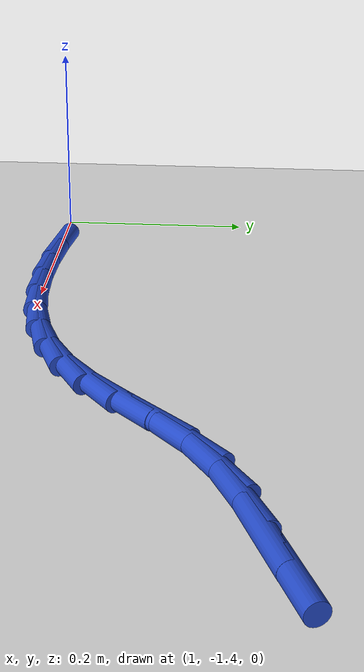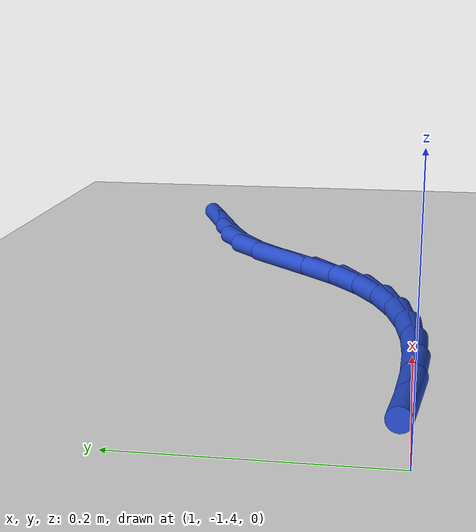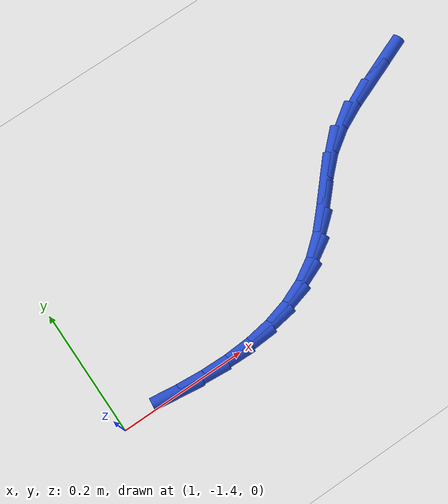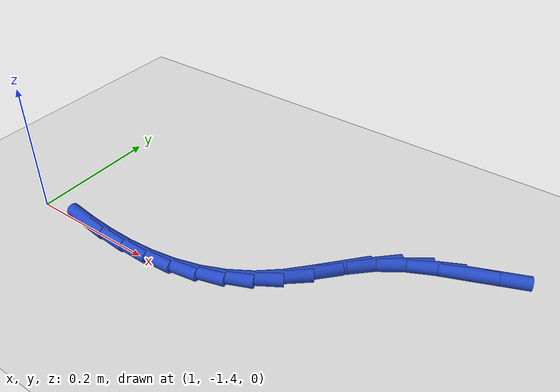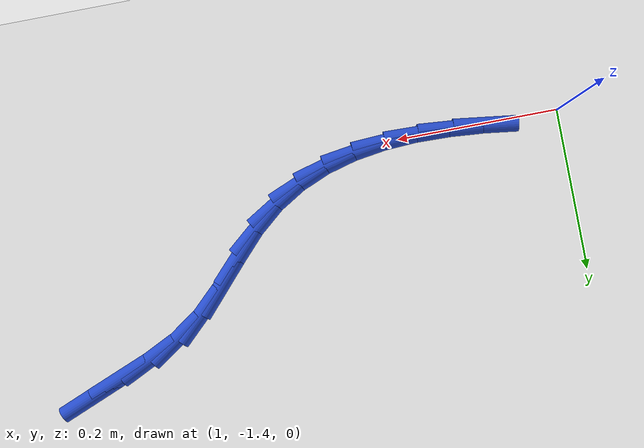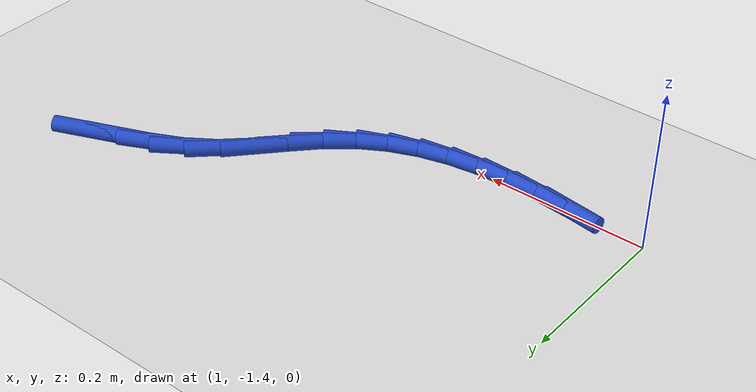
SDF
<sdf version="1.6">
 <world name="default">
  <model name="ground_plane">
   <static>1</static>
   <link name="link">
    <collision name="collision">
     <geometry><plane><normal>0 0 1</normal><size>100 100</size></plane></geometry>
     <surface><friction><ode><mu>100</mu><mu2>50</mu2></ode></friction></surface>
    </collision>
    <visual name="visual">
     <cast_shadows>0</cast_shadows>
     <geometry><plane><normal>0 0 1</normal><size>100 100</size></plane></geometry>
     <material>
      <script><uri>file://media/materials/scripts/gazebo.material</uri><name>Gazebo/WhiteGlow</name></script>
     </material>
    </visual>
   </link>
  </model>
  <model name="line">
   <link name="link_128">
    <pose>1.6301097126192576 -1.1591077224614437 0.01 0 1.57 0.38534955485783423</pose>
    <collision name="collision">
     <geometry><cylinder><radius>0.01</radius><length>0.08</length></cylinder></geometry>
    </collision>
    <visual name="visual">
     <material>
      <script><name>Gazebo/Blue</name><uri>file://media/materials/scripts/gazebo.material</uri></script>
     </material>
     <geometry><cylinder><radius>0.01</radius><length>0.08</length></cylinder></geometry>
    </visual>
   </link>
   <link name="link_129">
    <pose>1.5909798442646328 -1.174979933208232 0.01 0 1.57 0.3815637568291897</pose>
    <collision name="collision">
     <geometry><cylinder><radius>0.01</radius><length>0.08</length></cylinder></geometry>
    </collision>
    <visual name="visual">
     <material>
      <script><name>Gazebo/Blue</name><uri>file://media/materials/scripts/gazebo.material</uri></script>
     </material>
     <geometry><cylinder><radius>0.01</radius><length>0.08</length></cylinder></geometry>
    </visual>
   </link>
   <link name="link_130">
    <pose>1.5516513845807478 -1.1907595762451295 0.01 0 1.57 0.453560182451905</pose>
    <collision name="collision">
     <geometry><cylinder><radius>0.01</radius><length>0.08</length></cylinder></geometry>
    </collision>
    <visual name="visual">
     <material>
      <script><name>Gazebo/Blue</name><uri>file://media/materials/scripts/gazebo.material</uri></script>
     </material>
     <geometry><cylinder><radius>0.01</radius><length>0.08</length></cylinder></geometry>
    </visual>
   </link>
   <link name="link_131">
    <pose>1.513964164715417 -1.2091303461811445 0.01 0 1.57 0.6039104439701363</pose>
    <collision name="collision">
     <geometry><cylinder><radius>0.01</radius><length>0.08</length></cylinder></geometry>
    </collision>
    <visual name="visual">
     <material>
      <script><name>Gazebo/Blue</name><uri>file://media/materials/scripts/gazebo.material</uri></script>
     </material>
     <geometry><cylinder><radius>0.01</radius><length>0.08</length></cylinder></geometry>
    </visual>
   </link>
   <link name="link_132">
    <pose>1.4797377295092478 -1.232742922105792 0.01 0 1.57 0.7667887289836448</pose>
    <collision name="collision">
     <geometry><cylinder><radius>0.01</radius><length>0.08</length></cylinder></geometry>
    </collision>
    <visual name="visual">
     <material>
      <script><name>Gazebo/Blue</name><uri>file://media/materials/scripts/gazebo.material</uri></script>
     </material>
     <geometry><cylinder><radius>0.01</radius><length>0.08</length></cylinder></geometry>
    </visual>
   </link>
   <link name="link_133">
    <pose>1.449395705319438 -1.261976156431228 0.01 0 1.57 0.8392542943040475</pose>
    <collision name="collision">
     <geometry><cylinder><radius>0.01</radius><length>0.08</length></cylinder></geometry>
    </collision>
    <visual name="visual">
     <material>
      <script><name>Gazebo/Blue</name><uri>file://media/materials/scripts/gazebo.material</uri></script>
     </material>
     <geometry><cylinder><radius>0.01</radius><length>0.08</length></cylinder></geometry>
    </visual>
   </link>
   <link name="link_134">
    <pose>1.421088485307825 -1.2935092644643762 0.01 0 1.57 0.8168595397533073</pose>
    <collision name="collision">
     <geometry><cylinder><radius>0.01</radius><length>0.08</length></cylinder></geometry>
    </collision>
    <visual name="visual">
     <material>
      <script><name>Gazebo/Blue</name><uri>file://media/materials/scripts/gazebo.material</uri></script>
     </material>
     <geometry><cylinder><radius>0.01</radius><length>0.08</length></cylinder></geometry>
    </visual>
   </link>
   <link name="link_135">
    <pose>1.3927575252862947 -1.323681420563386 0.01 0 1.57 0.6985906981591735</pose>
    <collision name="collision">
     <geometry><cylinder><radius>0.01</radius><length>0.08</length></cylinder></geometry>
    </collision>
    <visual name="visual">
     <material>
      <script><name>Gazebo/Blue</name><uri>file://media/materials/scripts/gazebo.material</uri></script>
     </material>
     <geometry><cylinder><radius>0.01</radius><length>0.08</length></cylinder></geometry>
    </visual>
   </link>
   <link name="link_136">
    <pose>1.3624910954054297 -1.3491016533898779 0.01 0 1.57 0.5435341796814487</pose>
    <collision name="collision">
     <geometry><cylinder><radius>0.01</radius><length>0.08</length></cylinder></geometry>
    </collision>
    <visual name="visual">
     <material>
      <script><name>Gazebo/Blue</name><uri>file://media/materials/scripts/gazebo.material</uri></script>
     </material>
     <geometry><cylinder><radius>0.01</radius><length>0.08</length></cylinder></geometry>
    </visual>
   </link>
   <link name="link_137">
    <pose>1.3297432285995705 -1.3688893524325838 0.01 0 1.57 0.3958104951262344</pose>
    <collision name="collision">
     <geometry><cylinder><radius>0.01</radius><length>0.08</length></cylinder></geometry>
    </collision>
    <visual name="visual">
     <material>
      <script><name>Gazebo/Blue</name><uri>file://media/materials/scripts/gazebo.material</uri></script>
     </material>
     <geometry><cylinder><radius>0.01</radius><length>0.08</length></cylinder></geometry>
    </visual>
   </link>
   <link name="link_138">
    <pose>1.2947102800853956 -1.3835283438165478 0.01 0 1.57 0.2628794905892991</pose>
    <collision name="collision">
     <geometry><cylinder><radius>0.01</radius><length>0.08</length></cylinder></geometry>
    </collision>
    <visual name="visual">
     <material>
      <script><name>Gazebo/Blue</name><uri>file://media/materials/scripts/gazebo.material</uri></script>
     </material>
     <geometry><cylinder><radius>0.01</radius><length>0.08</length></cylinder></geometry>
    </visual>
   </link>
   <link name="link_139">
    <pose>1.2575960080716015 -1.3935160608476391 0.01 0 1.57 0.1485162139121959</pose>
    <collision name="collision">
     <geometry><cylinder><radius>0.01</radius><length>0.08</length></cylinder></geometry>
    </collision>
    <visual name="visual">
     <material>
      <script><name>Gazebo/Blue</name><uri>file://media/materials/scripts/gazebo.material</uri></script>
     </material>
     <geometry><cylinder><radius>0.01</radius><length>0.08</length></cylinder></geometry>
    </visual>
   </link>
   <link name="link_140">
    <pose>1.2186041707668813 -1.3993499368317268 0.01 0 1.57 0.053494560719028646</pose>
    <collision name="collision">
     <geometry><cylinder><radius>0.01</radius><length>0.08</length></cylinder></geometry>
    </collision>
    <visual name="visual">
     <material>
      <script><name>Gazebo/Blue</name><uri>file://media/materials/scripts/gazebo.material</uri></script>
     </material>
     <geometry><cylinder><radius>0.01</radius><length>0.08</length></cylinder></geometry>
    </visual>
   </link>
   <link name="link_141">
    <pose>1.177938526379931 -1.4015274050746787 0.01 0 1.57 -0.023289725407124644</pose>
    <collision name="collision">
     <geometry><cylinder><radius>0.01</radius><length>0.08</length></cylinder></geometry>
    </collision>
    <visual name="visual">
     <material>
      <script><name>Gazebo/Blue</name><uri>file://media/materials/scripts/gazebo.material</uri></script>
     </material>
     <geometry><cylinder><radius>0.01</radius><length>0.08</length></cylinder></geometry>
    </visual>
   </link>
   <link name="link_142">
    <pose>1.1358028331194465 -1.400545898882366 0.01 0 1.57 -0.0837410484351189</pose>
    <collision name="collision">
     <geometry><cylinder><radius>0.01</radius><length>0.08</length></cylinder></geometry>
    </collision>
    <visual name="visual">
     <material>
      <script><name>Gazebo/Blue</name><uri>file://media/materials/scripts/gazebo.material</uri></script>
     </material>
     <geometry><cylinder><radius>0.01</radius><length>0.08</length></cylinder></geometry>
    </visual>
   </link>
   <link name="link_143">
    <pose>1.0924008491941226 -1.396902851560656 0.01 0 1.57 -0.12986696203441223</pose>
    <collision name="collision">
     <geometry><cylinder><radius>0.01</radius><length>0.08</length></cylinder></geometry>
    </collision>
    <visual name="visual">
     <material>
      <script><name>Gazebo/Blue</name><uri>file://media/materials/scripts/gazebo.material</uri></script>
     </material>
     <geometry><cylinder><radius>0.01</radius><length>0.08</length></cylinder></geometry>
    </visual>
   </link>
  </model>
 </world>
</sdf>
